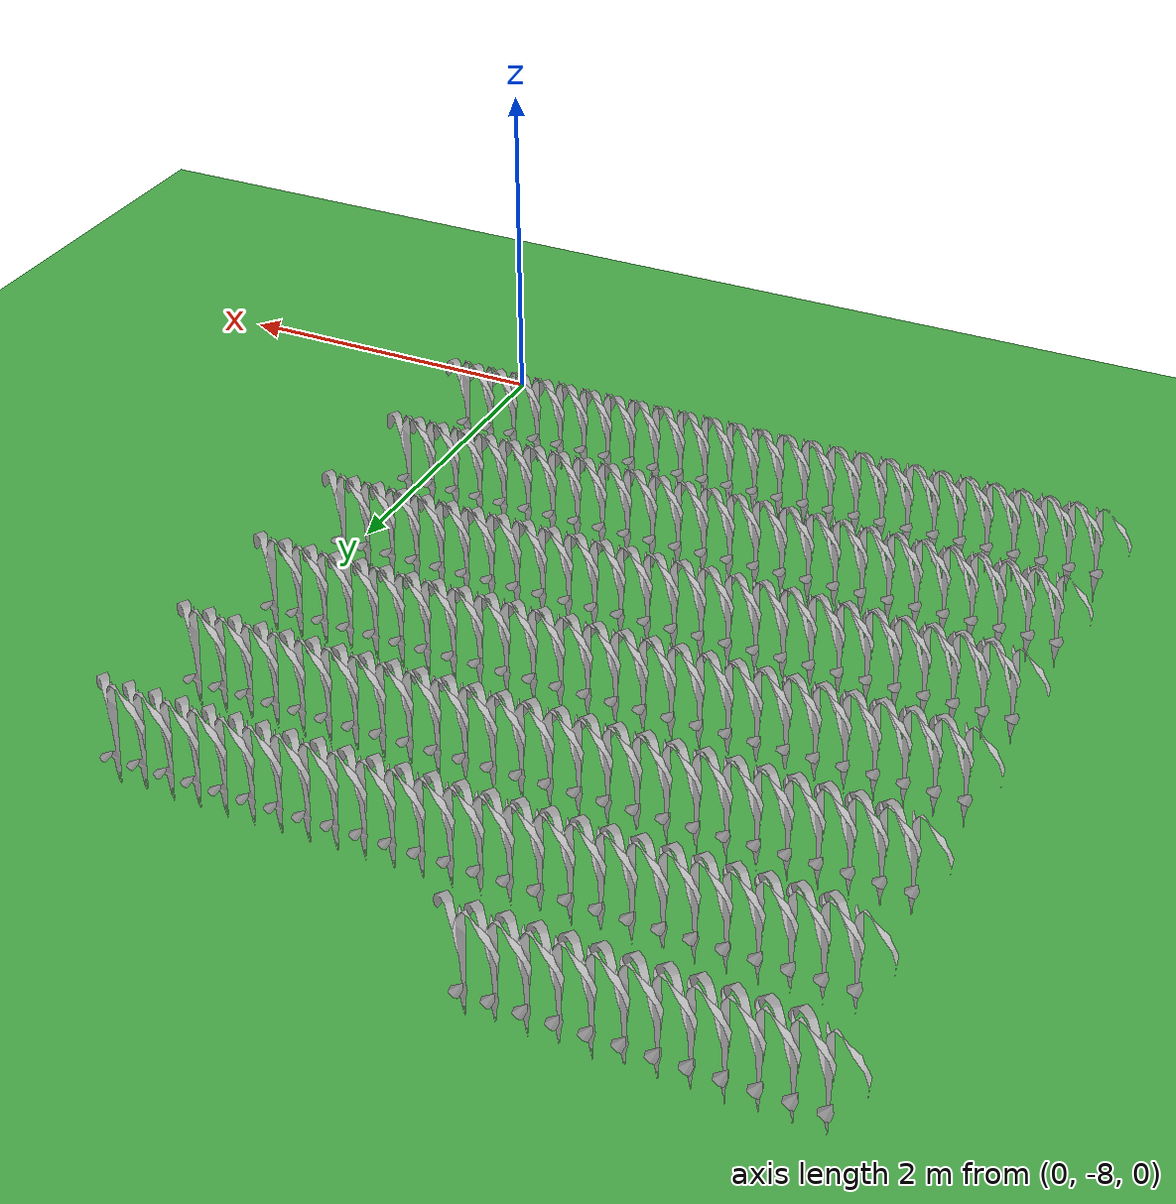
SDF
<sdf version="1.9">
 <world name="farm_world">
  <model name="ground_plane">
   <static>true</static>
   <link name="link">
    <collision name="collision">
     <geometry><plane><normal>0 0 1</normal><size>100 100</size></plane></geometry>
    </collision>
    <visual name="visual">
     <geometry><plane><normal>0 0 1</normal><size>100 100</size></plane></geometry>
     <material>
      <ambient>0.2 0.6 0.2 1</ambient>
      <diffuse>0.3 0.7 0.3 1</diffuse>
      <specular>0.1 0.1 0.1 1</specular>
     </material>
    </visual>
   </link>
  </model>
  <include><uri>model://maize_01</uri><name>maize_24</name><pose>-4.08 -7.12 0 0 0 0</pose></include>
  <include><uri>model://maize_01</uri><name>maize_25</name><pose>-3.92 -7.12 0 0 0 0</pose></include>
  <include><uri>model://maize_01</uri><name>maize_26</name><pose>-3.76 -7.12 0 0 0 0</pose></include>
  <include><uri>model://maize_01</uri><name>maize_27</name><pose>-3.60 -7.12 0 0 0 0</pose></include>
  <include><uri>model://maize_01</uri><name>maize_28</name><pose>-3.44 -7.12 0 0 0 0</pose></include>
  <include><uri>model://maize_01</uri><name>maize_29</name><pose>-3.28 -7.12 0 0 0 0</pose></include>
  <include><uri>model://maize_01</uri><name>maize_30</name><pose>-3.12 -7.12 0 0 0 0</pose></include>
  <include><uri>model://maize_01</uri><name>maize_31</name><pose>-2.96 -7.12 0 0 0 0</pose></include>
  <include><uri>model://maize_01</uri><name>maize_32</name><pose>-2.80 -7.12 0 0 0 0</pose></include>
  <include><uri>model://maize_01</uri><name>maize_33</name><pose>-2.64 -7.12 0 0 0 0</pose></include>
  <include><uri>model://maize_01</uri><name>maize_34</name><pose>-2.48 -7.12 0 0 0 0</pose></include>
  <include><uri>model://maize_01</uri><name>maize_35</name><pose>-2.32 -7.12 0 0 0 0</pose></include>
  <include><uri>model://maize_01</uri><name>maize_36</name><pose>-2.16 -7.12 0 0 0 0</pose></include>
  <include><uri>model://maize_01</uri><name>maize_37</name><pose>-2.00 -7.12 0 0 0 0</pose></include>
  <include><uri>model://maize_01</uri><name>maize_38</name><pose>-1.84 -7.12 0 0 0 0</pose></include>
  <include><uri>model://maize_01</uri><name>maize_39</name><pose>-1.68 -7.12 0 0 0 0</pose></include>
  <include><uri>model://maize_01</uri><name>maize_40</name><pose>-1.52 -7.12 0 0 0 0</pose></include>
  <include><uri>model://maize_01</uri><name>maize_41</name><pose>-1.36 -7.12 0 0 0 0</pose></include>
  <include><uri>model://maize_01</uri><name>maize_42</name><pose>-1.20 -7.12 0 0 0 0</pose></include>
  <include><uri>model://maize_01</uri><name>maize_43</name><pose>-1.04 -7.12 0 0 0 0</pose></include>
  <include><uri>model://maize_01</uri><name>maize_44</name><pose>-0.88 -7.12 0 0 0 0</pose></include>
  <include><uri>model://maize_01</uri><name>maize_45</name><pose>-0.72 -7.12 0 0 0 0</pose></include>
  <include><uri>model://maize_01</uri><name>maize_46</name><pose>-0.56 -7.12 0 0 0 0</pose></include>
  <include><uri>model://maize_01</uri><name>maize_47</name><pose>-0.40 -7.12 0 0 0 0</pose></include>
  <include><uri>model://maize_01</uri><name>maize_48</name><pose>-0.24 -7.12 0 0 0 0</pose></include>
  <include><uri>model://maize_01</uri><name>maize_49</name><pose>-0.08 -7.12 0 0 0 0</pose></include>
  <include><uri>model://maize_01</uri><name>maize_124</name><pose>-4.08 -6.38 0 0 0 0</pose></include>
  <include><uri>model://maize_01</uri><name>maize_125</name><pose>-3.92 -6.38 0 0 0 0</pose></include>
  <include><uri>model://maize_01</uri><name>maize_126</name><pose>-3.76 -6.38 0 0 0 0</pose></include>
  <include><uri>model://maize_01</uri><name>maize_127</name><pose>-3.60 -6.38 0 0 0 0</pose></include>
  <include><uri>model://maize_01</uri><name>maize_128</name><pose>-3.44 -6.38 0 0 0 0</pose></include>
  <include><uri>model://maize_01</uri><name>maize_129</name><pose>-3.28 -6.38 0 0 0 0</pose></include>
  <include><uri>model://maize_01</uri><name>maize_130</name><pose>-3.12 -6.38 0 0 0 0</pose></include>
  <include><uri>model://maize_01</uri><name>maize_131</name><pose>-2.96 -6.38 0 0 0 0</pose></include>
  <include><uri>model://maize_01</uri><name>maize_132</name><pose>-2.80 -6.38 0 0 0 0</pose></include>
  <include><uri>model://maize_01</uri><name>maize_133</name><pose>-2.64 -6.38 0 0 0 0</pose></include>
  <include><uri>model://maize_01</uri><name>maize_134</name><pose>-2.48 -6.38 0 0 0 0</pose></include>
  <include><uri>model://maize_01</uri><name>maize_135</name><pose>-2.32 -6.38 0 0 0 0</pose></include>
  <include><uri>model://maize_01</uri><name>maize_136</name><pose>-2.16 -6.38 0 0 0 0</pose></include>
  <include><uri>model://maize_01</uri><name>maize_137</name><pose>-2.00 -6.38 0 0 0 0</pose></include>
  <include><uri>model://maize_01</uri><name>maize_138</name><pose>-1.84 -6.38 0 0 0 0</pose></include>
  <include><uri>model://maize_01</uri><name>maize_139</name><pose>-1.68 -6.38 0 0 0 0</pose></include>
  <include><uri>model://maize_01</uri><name>maize_140</name><pose>-1.52 -6.38 0 0 0 0</pose></include>
  <include><uri>model://maize_01</uri><name>maize_141</name><pose>-1.36 -6.38 0 0 0 0</pose></include>
  <include><uri>model://maize_01</uri><name>maize_142</name><pose>-1.20 -6.38 0 0 0 0</pose></include>
  <include><uri>model://maize_01</uri><name>maize_143</name><pose>-1.04 -6.38 0 0 0 0</pose></include>
  <include><uri>model://maize_01</uri><name>maize_144</name><pose>-0.88 -6.38 0 0 0 0</pose></include>
  <include><uri>model://maize_01</uri><name>maize_145</name><pose>-0.72 -6.38 0 0 0 0</pose></include>
  <include><uri>model://maize_01</uri><name>maize_146</name><pose>-0.56 -6.38 0 0 0 0</pose></include>
  <include><uri>model://maize_01</uri><name>maize_147</name><pose>-0.40 -6.38 0 0 0 0</pose></include>
  <include><uri>model://maize_01</uri><name>maize_148</name><pose>-0.24 -6.38 0 0 0 0</pose></include>
  <include><uri>model://maize_01</uri><name>maize_149</name><pose>-0.08 -6.38 0 0 0 0</pose></include>
  <include><uri>model://maize_01</uri><name>maize_224</name><pose>-4.08 -5.62 0 0 0 0</pose></include>
  <include><uri>model://maize_01</uri><name>maize_225</name><pose>-3.92 -5.62 0 0 0 0</pose></include>
  <include><uri>model://maize_01</uri><name>maize_226</name><pose>-3.76 -5.62 0 0 0 0</pose></include>
  <include><uri>model://maize_01</uri><name>maize_227</name><pose>-3.60 -5.62 0 0 0 0</pose></include>
  <include><uri>model://maize_01</uri><name>maize_228</name><pose>-3.44 -5.62 0 0 0 0</pose></include>
  <include><uri>model://maize_01</uri><name>maize_229</name><pose>-3.28 -5.62 0 0 0 0</pose></include>
  <include><uri>model://maize_01</uri><name>maize_230</name><pose>-3.12 -5.62 0 0 0 0</pose></include>
  <include><uri>model://maize_01</uri><name>maize_231</name><pose>-2.96 -5.62 0 0 0 0</pose></include>
  <include><uri>model://maize_01</uri><name>maize_232</name><pose>-2.80 -5.62 0 0 0 0</pose></include>
  <include><uri>model://maize_01</uri><name>maize_233</name><pose>-2.64 -5.62 0 0 0 0</pose></include>
  <include><uri>model://maize_01</uri><name>maize_234</name><pose>-2.48 -5.62 0 0 0 0</pose></include>
  <include><uri>model://maize_01</uri><name>maize_235</name><pose>-2.32 -5.62 0 0 0 0</pose></include>
  <include><uri>model://maize_01</uri><name>maize_236</name><pose>-2.16 -5.62 0 0 0 0</pose></include>
  <include><uri>model://maize_01</uri><name>maize_237</name><pose>-2.00 -5.62 0 0 0 0</pose></include>
  <include><uri>model://maize_01</uri><name>maize_238</name><pose>-1.84 -5.62 0 0 0 0</pose></include>
  <include><uri>model://maize_01</uri><name>maize_239</name><pose>-1.68 -5.62 0 0 0 0</pose></include>
  <include><uri>model://maize_01</uri><name>maize_240</name><pose>-1.52 -5.62 0 0 0 0</pose></include>
  <include><uri>model://maize_01</uri><name>maize_241</name><pose>-1.36 -5.62 0 0 0 0</pose></include>
  <include><uri>model://maize_01</uri><name>maize_242</name><pose>-1.20 -5.62 0 0 0 0</pose></include>
  <include><uri>model://maize_01</uri><name>maize_243</name><pose>-1.04 -5.62 0 0 0 0</pose></include>
  <include><uri>model://maize_01</uri><name>maize_244</name><pose>-0.88 -5.62 0 0 0 0</pose></include>
  <include><uri>model://maize_01</uri><name>maize_245</name><pose>-0.72 -5.62 0 0 0 0</pose></include>
  <include><uri>model://maize_01</uri><name>maize_246</name><pose>-0.56 -5.62 0 0 0 0</pose></include>
  <include><uri>model://maize_01</uri><name>maize_247</name><pose>-0.40 -5.62 0 0 0 0</pose></include>
  <include><uri>model://maize_01</uri><name>maize_248</name><pose>-0.24 -5.62 0 0 0 0</pose></include>
  <include><uri>model://maize_01</uri><name>maize_249</name><pose>-0.08 -5.62 0 0 0 0</pose></include>
  <include><uri>model://maize_01</uri><name>maize_324</name><pose>-4.08 -4.88 0 0 0 0</pose></include>
  <include><uri>model://maize_01</uri><name>maize_325</name><pose>-3.92 -4.88 0 0 0 0</pose></include>
  <include><uri>model://maize_01</uri><name>maize_326</name><pose>-3.76 -4.88 0 0 0 0</pose></include>
  <include><uri>model://maize_01</uri><name>maize_327</name><pose>-3.60 -4.88 0 0 0 0</pose></include>
  <include><uri>model://maize_01</uri><name>maize_328</name><pose>-3.44 -4.88 0 0 0 0</pose></include>
  <include><uri>model://maize_01</uri><name>maize_329</name><pose>-3.28 -4.88 0 0 0 0</pose></include>
  <include><uri>model://maize_01</uri><name>maize_330</name><pose>-3.12 -4.88 0 0 0 0</pose></include>
  <include><uri>model://maize_01</uri><name>maize_331</name><pose>-2.96 -4.88 0 0 0 0</pose></include>
  <include><uri>model://maize_01</uri><name>maize_332</name><pose>-2.80 -4.88 0 0 0 0</pose></include>
  <include><uri>model://maize_01</uri><name>maize_333</name><pose>-2.64 -4.88 0 0 0 0</pose></include>
  <include><uri>model://maize_01</uri><name>maize_334</name><pose>-2.48 -4.88 0 0 0 0</pose></include>
  <include><uri>model://maize_01</uri><name>maize_335</name><pose>-2.32 -4.88 0 0 0 0</pose></include>
  <include><uri>model://maize_01</uri><name>maize_336</name><pose>-2.16 -4.88 0 0 0 0</pose></include>
  <include><uri>model://maize_01</uri><name>maize_337</name><pose>-2.00 -4.88 0 0 0 0</pose></include>
  <include><uri>model://maize_01</uri><name>maize_338</name><pose>-1.84 -4.88 0 0 0 0</pose></include>
  <include><uri>model://maize_01</uri><name>maize_339</name><pose>-1.68 -4.88 0 0 0 0</pose></include>
  <include><uri>model://maize_01</uri><name>maize_340</name><pose>-1.52 -4.88 0 0 0 0</pose></include>
  <include><uri>model://maize_01</uri><name>maize_341</name><pose>-1.36 -4.88 0 0 0 0</pose></include>
  <include><uri>model://maize_01</uri><name>maize_342</name><pose>-1.20 -4.88 0 0 0 0</pose></include>
  <include><uri>model://maize_01</uri><name>maize_343</name><pose>-1.04 -4.88 0 0 0 0</pose></include>
  <include><uri>model://maize_01</uri><name>maize_344</name><pose>-0.88 -4.88 0 0 0 0</pose></include>
  <include><uri>model://maize_01</uri><name>maize_345</name><pose>-0.72 -4.88 0 0 0 0</pose></include>
  <include><uri>model://maize_01</uri><name>maize_346</name><pose>-0.56 -4.88 0 0 0 0</pose></include>
  <include><uri>model://maize_01</uri><name>maize_347</name><pose>-0.40 -4.88 0 0 0 0</pose></include>
  <include><uri>model://maize_01</uri><name>maize_348</name><pose>-0.24 -4.88 0 0 0 0</pose></include>
  <include><uri>model://maize_01</uri><name>maize_349</name><pose>-0.08 -4.88 0 0 0 0</pose></include>
  <include><uri>model://maize_01</uri><name>maize_424</name><pose>-4.08 -4.12 0 0 0 0</pose></include>
  <include><uri>model://maize_01</uri><name>maize_425</name><pose>-3.92 -4.12 0 0 0 0</pose></include>
  <include><uri>model://maize_01</uri><name>maize_426</name><pose>-3.76 -4.12 0 0 0 0</pose></include>
  <include><uri>model://maize_01</uri><name>maize_427</name><pose>-3.60 -4.12 0 0 0 0</pose></include>
  <include><uri>model://maize_01</uri><name>maize_428</name><pose>-3.44 -4.12 0 0 0 0</pose></include>
  <include><uri>model://maize_01</uri><name>maize_429</name><pose>-3.28 -4.12 0 0 0 0</pose></include>
  <include><uri>model://maize_01</uri><name>maize_430</name><pose>-3.12 -4.12 0 0 0 0</pose></include>
  <include><uri>model://maize_01</uri><name>maize_431</name><pose>-2.96 -4.12 0 0 0 0</pose></include>
  <include><uri>model://maize_01</uri><name>maize_432</name><pose>-2.80 -4.12 0 0 0 0</pose></include>
  <include><uri>model://maize_01</uri><name>maize_433</name><pose>-2.64 -4.12 0 0 0 0</pose></include>
  <include><uri>model://maize_01</uri><name>maize_434</name><pose>-2.48 -4.12 0 0 0 0</pose></include>
  <include><uri>model://maize_01</uri><name>maize_435</name><pose>-2.32 -4.12 0 0 0 0</pose></include>
  <include><uri>model://maize_01</uri><name>maize_436</name><pose>-2.16 -4.12 0 0 0 0</pose></include>
  <include><uri>model://maize_01</uri><name>maize_437</name><pose>-2.00 -4.12 0 0 0 0</pose></include>
  <include><uri>model://maize_01</uri><name>maize_438</name><pose>-1.84 -4.12 0 0 0 0</pose></include>
  <include><uri>model://maize_01</uri><name>maize_439</name><pose>-1.68 -4.12 0 0 0 0</pose></include>
  <include><uri>model://maize_01</uri><name>maize_440</name><pose>-1.52 -4.12 0 0 0 0</pose></include>
  <include><uri>model://maize_01</uri><name>maize_441</name><pose>-1.36 -4.12 0 0 0 0</pose></include>
  <include><uri>model://maize_01</uri><name>maize_442</name><pose>-1.20 -4.12 0 0 0 0</pose></include>
  <include><uri>model://maize_01</uri><name>maize_443</name><pose>-1.04 -4.12 0 0 0 0</pose></include>
  <include><uri>model://maize_01</uri><name>maize_444</name><pose>-0.88 -4.12 0 0 0 0</pose></include>
  <include><uri>model://maize_01</uri><name>maize_445</name><pose>-0.72 -4.12 0 0 0 0</pose></include>
  <include><uri>model://maize_01</uri><name>maize_446</name><pose>-0.56 -4.12 0 0 0 0</pose></include>
  <include><uri>model://maize_01</uri><name>maize_447</name><pose>-0.40 -4.12 0 0 0 0</pose></include>
  <include><uri>model://maize_01</uri><name>maize_448</name><pose>-0.24 -4.12 0 0 0 0</pose></include>
  <include><uri>model://maize_01</uri><name>maize_449</name><pose>-0.08 -4.12 0 0 0 0</pose></include>
  <include><uri>model://maize_01</uri><name>maize_524</name><pose>-4.08 -3.38 0 0 0 0</pose></include>
  <include><uri>model://maize_01</uri><name>maize_525</name><pose>-3.92 -3.38 0 0 0 0</pose></include>
  <include><uri>model://maize_01</uri><name>maize_526</name><pose>-3.76 -3.38 0 0 0 0</pose></include>
  <include><uri>model://maize_01</uri><name>maize_527</name><pose>-3.60 -3.38 0 0 0 0</pose></include>
  <include><uri>model://maize_01</uri><name>maize_528</name><pose>-3.44 -3.38 0 0 0 0</pose></include>
  <include><uri>model://maize_01</uri><name>maize_529</name><pose>-3.28 -3.38 0 0 0 0</pose></include>
  <include><uri>model://maize_01</uri><name>maize_530</name><pose>-3.12 -3.38 0 0 0 0</pose></include>
  <include><uri>model://maize_01</uri><name>maize_531</name><pose>-2.96 -3.38 0 0 0 0</pose></include>
  <include><uri>model://maize_01</uri><name>maize_532</name><pose>-2.80 -3.38 0 0 0 0</pose></include>
  <include><uri>model://maize_01</uri><name>maize_533</name><pose>-2.64 -3.38 0 0 0 0</pose></include>
  <include><uri>model://maize_01</uri><name>maize_534</name><pose>-2.48 -3.38 0 0 0 0</pose></include>
  <include><uri>model://maize_01</uri><name>maize_535</name><pose>-2.32 -3.38 0 0 0 0</pose></include>
  <include><uri>model://maize_01</uri><name>maize_536</name><pose>-2.16 -3.38 0 0 0 0</pose></include>
  <include><uri>model://maize_01</uri><name>maize_537</name><pose>-2.00 -3.38 0 0 0 0</pose></include>
  <include><uri>model://maize_01</uri><name>maize_538</name><pose>-1.84 -3.38 0 0 0 0</pose></include>
  <include><uri>model://maize_01</uri><name>maize_539</name><pose>-1.68 -3.38 0 0 0 0</pose></include>
  <include><uri>model://maize_01</uri><name>maize_540</name><pose>-1.52 -3.38 0 0 0 0</pose></include>
  <include><uri>model://maize_01</uri><name>maize_541</name><pose>-1.36 -3.38 0 0 0 0</pose></include>
  <include><uri>model://maize_01</uri><name>maize_542</name><pose>-1.20 -3.38 0 0 0 0</pose></include>
  <include><uri>model://maize_01</uri><name>maize_543</name><pose>-1.04 -3.38 0 0 0 0</pose></include>
  <include><uri>model://maize_01</uri><name>maize_544</name><pose>-0.88 -3.38 0 0 0 0</pose></include>
  <include><uri>model://maize_01</uri><name>maize_545</name><pose>-0.72 -3.38 0 0 0 0</pose></include>
  <include><uri>model://maize_01</uri><name>maize_546</name><pose>-0.56 -3.38 0 0 0 0</pose></include>
  <include><uri>model://maize_01</uri><name>maize_547</name><pose>-0.40 -3.38 0 0 0 0</pose></include>
  <include><uri>model://maize_01</uri><name>maize_548</name><pose>-0.24 -3.38 0 0 0 0</pose></include>
  <include><uri>model://maize_01</uri><name>maize_549</name><pose>-0.08 -3.38 0 0 0 0</pose></include>
  <include><uri>model://maize_01</uri><name>maize_623</name><pose>-4.24 -2.62 0 0 0 0</pose></include>
  <include><uri>model://maize_01</uri><name>maize_624</name><pose>-4.08 -2.62 0 0 0 0</pose></include>
  <include><uri>model://maize_01</uri><name>maize_625</name><pose>-3.92 -2.62 0 0 0 0</pose></include>
  <include><uri>model://maize_01</uri><name>maize_626</name><pose>-3.76 -2.62 0 0 0 0</pose></include>
  <include><uri>model://maize_01</uri><name>maize_627</name><pose>-3.60 -2.62 0 0 0 0</pose></include>
  <include><uri>model://maize_01</uri><name>maize_628</name><pose>-3.44 -2.62 0 0 0 0</pose></include>
  <include><uri>model://maize_01</uri><name>maize_629</name><pose>-3.28 -2.62 0 0 0 0</pose></include>
  <include><uri>model://maize_01</uri><name>maize_630</name><pose>-3.12 -2.62 0 0 0 0</pose></include>
  <include><uri>model://maize_01</uri><name>maize_631</name><pose>-2.96 -2.62 0 0 0 0</pose></include>
  <include><uri>model://maize_01</uri><name>maize_632</name><pose>-2.80 -2.62 0 0 0 0</pose></include>
  <include><uri>model://maize_01</uri><name>maize_633</name><pose>-2.64 -2.62 0 0 0 0</pose></include>
  <include><uri>model://maize_01</uri><name>maize_634</name><pose>-2.48 -2.62 0 0 0 0</pose></include>
 </world>
</sdf>
